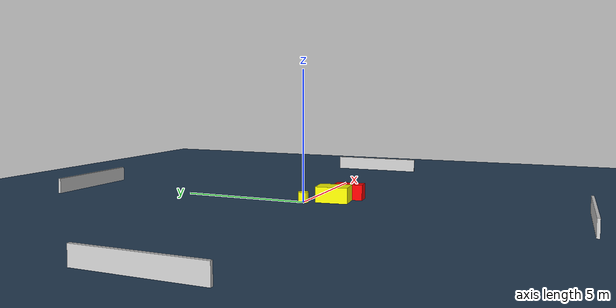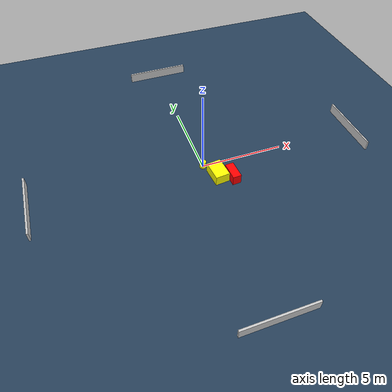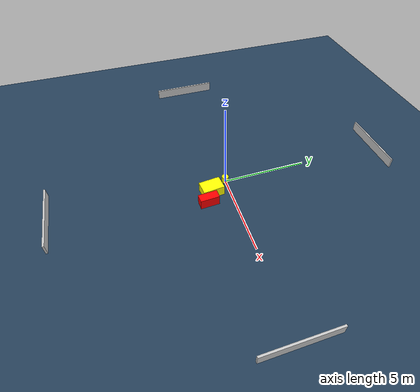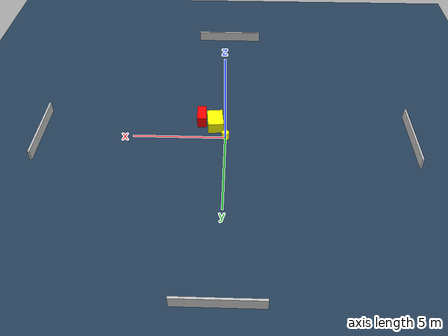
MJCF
<?xml version="1.0" ?>
<mujoco model="generated_environment">
  <option timestep="0.01" integrator="RK4" cone="elliptic"/>
  <default>
    <geom density="1"/>
  </default>
  <asset>
    <texture builtin="gradient" height="3072" name="skybox" rgb1="0.3 0.5 0.7" rgb2="0 0 0" type="skybox" width="512"/>
    <texture builtin="checker" height="300" name="groundplane" rgb1="0.2 0.3 0.4" rgb2="0.1 0.2 0.3" type="2d" width="300"/>
    <material name="groundplane" reflectance="0.2" texrepeat="5 5" texture="groundplane"/>
  </asset>
  <worldbody>
    <light dir="0 0 -1" directional="true" pos="0 0 1.5"/>
    <geom condim="3" friction="0.5 0.005 0.001" material="groundplane" name="floor" pos="0 0 0" size="0 0 0.05" type="plane"/>
    <body name="walls">
      <geom name="wall_1" condim="4" pos="-10.0 0.0 0.3" rgba="0.800000011920929 0.800000011920929 0.800000011920929 1.0" size="0.05 2.0 0.3" type="box"/>
      <geom name="wall_2" condim="4" pos="10.0 0.0 0.3" rgba="0.800000011920929 0.800000011920929 0.800000011920929 1.0" size="0.05 2.0 0.3" type="box"/>
      <geom name="wall_3" condim="4" pos="0.0 -10.0 0.3" rgba="0.800000011920929 0.800000011920929 0.800000011920929 1.0" size="2.0 0.05 0.3" type="box"/>
      <geom name="wall_4" condim="4" pos="0.0 10.0 0.3" rgba="0.800000011920929 0.800000011920929 0.800000011920929 1.0" size="2.0 0.05 0.3" type="box"/>
    </body>
    <body name="robot">
      <joint name="joint_x" type="slide" pos="0 0 0" axis="1 0 0"/>
      <joint name="joint_y" type="slide" pos="0 0 0" axis="0 1 0"/>
      <geom name="robot" type="cylinder" pos="0.0 0.0 0.2" size="0.2 0.2 0.0" mass="5.0" friction="1.0 0.005 0.0001" condim="4" rgba="1.0 1.0 0.0 1.0"/>
    </body>
    <body name="obstacle_1_movable">
      <geom name="obstacle_1_movable" condim="4" pos="0.5856418815500928 -1.002391664067694 0.3" euler="0 0 185.61717809617852" friction="0.0 0.005 0.001" rgba="1.0 1.0 0.0 1.0" size="0.4271385573454067 0.6193088346598131 0.3" type="box" mass="0.1"/>
      <joint type="free"/>
    </body>
    <body name="obstacle_2_static">
      <geom name="obstacle_2_static" condim="4" pos="1.349178118896379 -1.3945242465081629 0.3" euler="0 0 272.99921430056446" friction="0.0 0.005 0.001" rgba="1.0 0.0 0.0 1.0" size="0.5471114418630758 0.25167799703074506 0.3" type="box"/>
    </body>
  </worldbody>
  <actuator>
    <motor name="actuator_x" joint="joint_x" gear="1" ctrlrange="-1 1"/>
    <motor name="actuator_y" joint="joint_y" gear="1" ctrlrange="-1 1"/>
  </actuator>
</mujoco>
